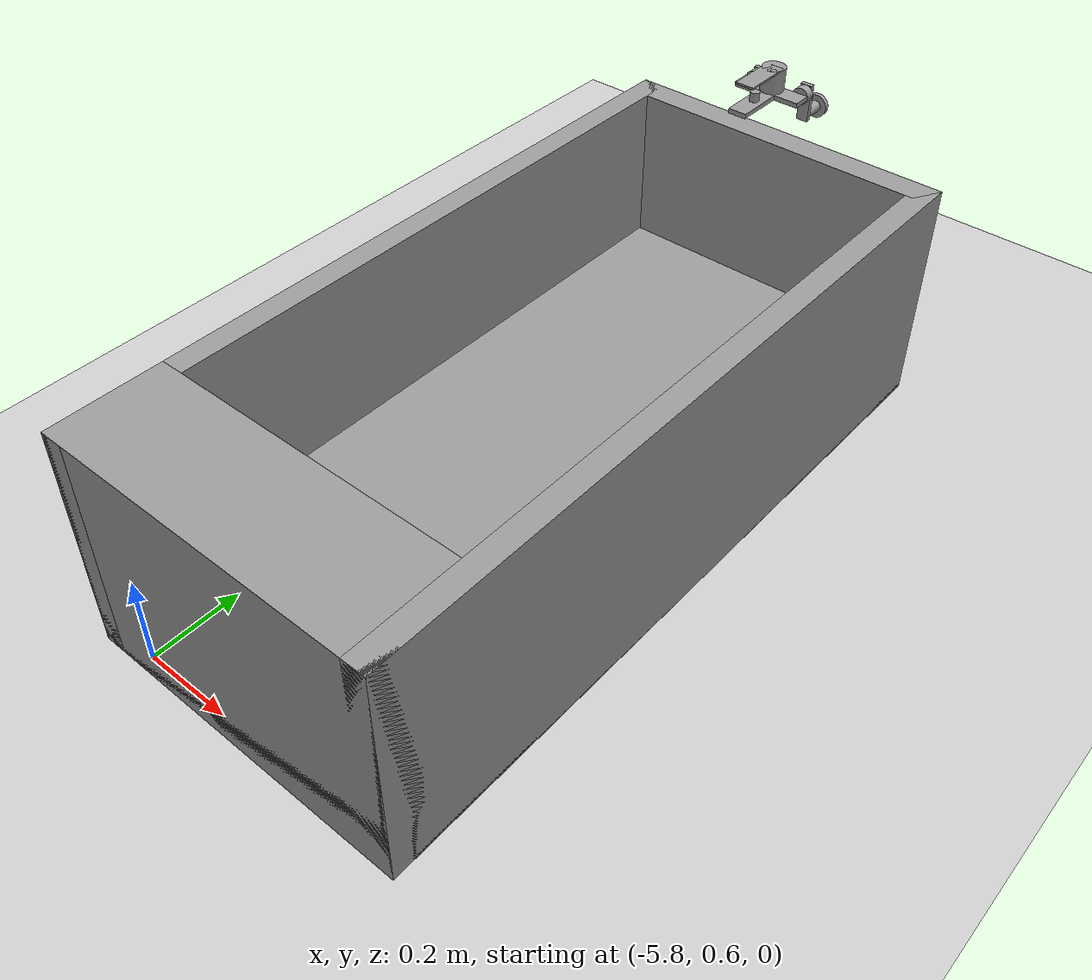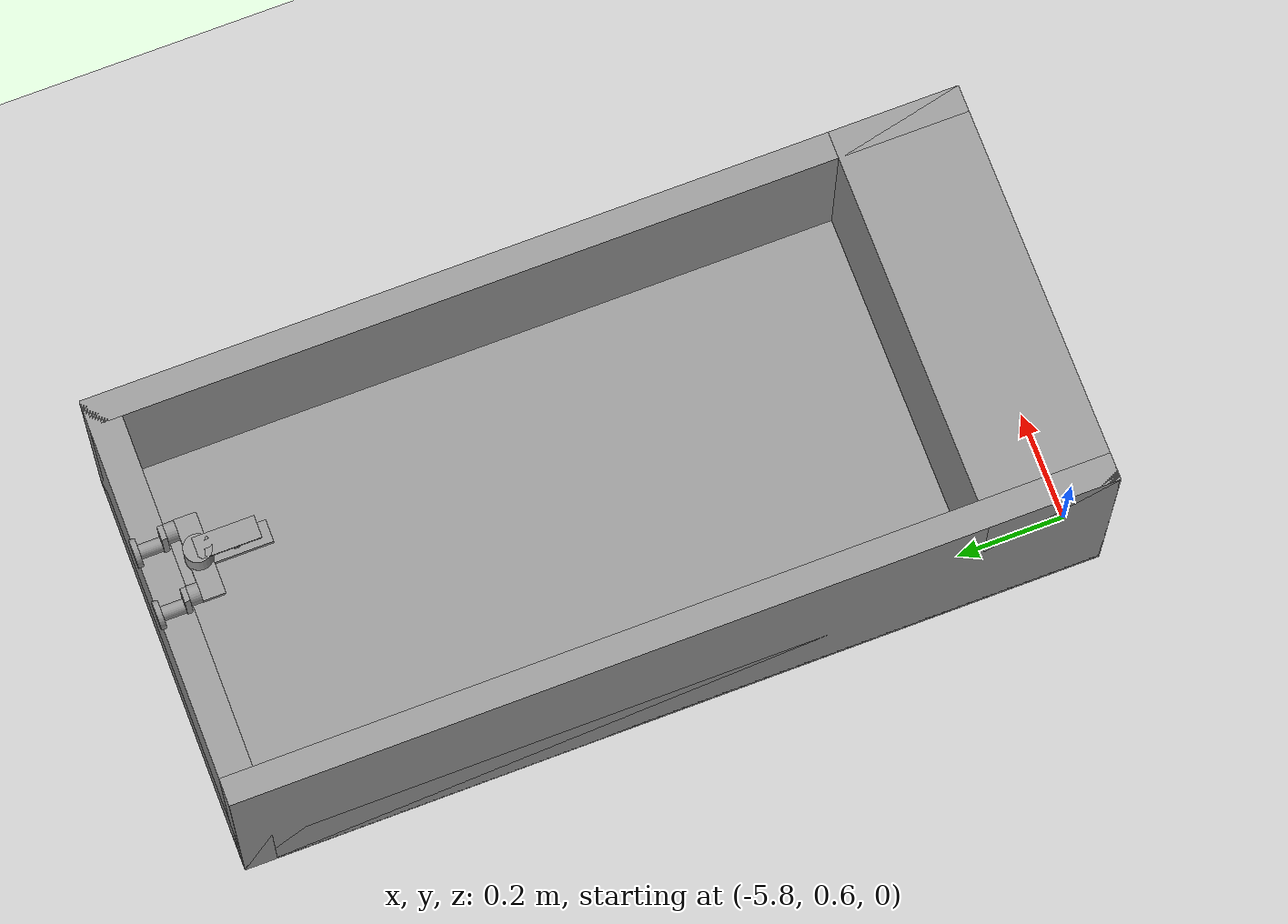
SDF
<sdf version="1.6">
 <world name="default">
  <model name="ground_plane">
   <static>1</static>
   <link name="link">
    <collision name="collision">
     <geometry><plane><normal>0 0 1</normal><size>100 100</size></plane></geometry>
     <surface><friction><ode><mu>100</mu><mu2>50</mu2></ode></friction></surface>
    </collision>
    <visual name="visual">
     <cast_shadows>0</cast_shadows>
     <geometry><plane><normal>0 0 1</normal><size>100 100</size></plane></geometry>
     <material>
      <script><uri>file://media/materials/scripts/gazebo.material</uri><name>Gazebo/Grey</name></script>
     </material>
    </visual>
   </link>
  </model>
  <model name="bathhhhh_2_0">
   <link name="link_10">
    <pose>-0.698 0 0.035 0 -0 0</pose>
    <visual name="visual">
     <geometry><box><size>0.24 0.75 0.51</size></box></geometry>
     <material>
      <lighting>1</lighting>
      <script><uri>file://media/materials/scripts/gazebo.material</uri><name>Gazebo/Grey</name></script>
      <ambient>0.3 0.3 0.3 1</ambient>
      <diffuse>0.7 0.7 0.7 1</diffuse>
      <specular>0.01 0.01 1 1</specular>
      <emissive>0 0 0 1</emissive>
      <shader type="vertex"><normal_map>__default__</normal_map></shader>
     </material>
    </visual>
    <collision name="collision">
     <geometry><box><size>0.24 0.75 0.51</size></box></geometry>
     <surface>
      <friction>
       <ode><mu>1</mu><mu2>1</mu2><fdir1>0 0 0</fdir1><slip1>0</slip1><slip2>0</slip2></ode>
       <torsional>
        <coefficient>1</coefficient>
        <patch_radius>0</patch_radius>
        <surface_radius>0</surface_radius>
        <use_patch_radius>1</use_patch_radius>
        <ode><slip>0</slip></ode>
       </torsional>
      </friction>
      <bounce><restitution_coefficient>0</restitution_coefficient><threshold>1e+06</threshold></bounce>
      <contact>
       <collide_without_contact>0</collide_without_contact>
       <collide_without_contact_bitmask>1</collide_without_contact_bitmask>
       <collide_bitmask>1</collide_bitmask>
       <ode>
        <soft_cfm>0</soft_cfm>
        <soft_erp>0.2</soft_erp>
        <kp>1e+13</kp>
        <kd>1</kd>
        <max_vel>0.01</max_vel>
        <min_depth>0</min_depth>
       </ode>
       <bullet>
        <split_impulse>1</split_impulse>
        <split_impulse_penetration_threshold>-0.01</split_impulse_penetration_threshold>
        <soft_cfm>0</soft_cfm>
        <soft_erp>0.2</soft_erp>
        <kp>1e+13</kp>
        <kd>1</kd>
       </bullet>
      </contact>
     </surface>
    </collision>
    <inertial>
     <inertia><ixx>1</ixx><ixy>0</ixy><ixz>0</ixz><iyy>1</iyy><iyz>0</iyz><izz>1</izz></inertia>
     <mass>1</mass>
    </inertial>
   </link>
   <link name="link_7">
    <pose>-0.018 0 -0.14 0 -0 0</pose>
    <visual name="visual">
     <geometry><box><size>1.6 0.75 0.16</size></box></geometry>
     <material>
      <lighting>1</lighting>
      <script><uri>file://media/materials/scripts/gazebo.material</uri><name>Gazebo/Grey</name></script>
      <ambient>0.3 0.3 0.3 1</ambient>
      <diffuse>0.7 0.7 0.7 1</diffuse>
      <specular>0.01 0.01 1 1</specular>
      <emissive>0 0 0 1</emissive>
      <shader type="vertex"><normal_map>__default__</normal_map></shader>
     </material>
    </visual>
    <collision name="collision">
     <geometry><box><size>1.6 0.75 0.16</size></box></geometry>
     <surface>
      <friction>
       <ode><mu>1</mu><mu2>1</mu2><fdir1>0 0 0</fdir1><slip1>0</slip1><slip2>0</slip2></ode>
       <torsional>
        <coefficient>1</coefficient>
        <patch_radius>0</patch_radius>
        <surface_radius>0</surface_radius>
        <use_patch_radius>1</use_patch_radius>
        <ode><slip>0</slip></ode>
       </torsional>
      </friction>
      <bounce><restitution_coefficient>0</restitution_coefficient><threshold>1e+06</threshold></bounce>
      <contact>
       <collide_without_contact>0</collide_without_contact>
       <collide_without_contact_bitmask>1</collide_without_contact_bitmask>
       <collide_bitmask>1</collide_bitmask>
       <ode>
        <soft_cfm>0</soft_cfm>
        <soft_erp>0.2</soft_erp>
        <kp>1e+13</kp>
        <kd>1</kd>
        <max_vel>0.01</max_vel>
        <min_depth>0</min_depth>
       </ode>
       <bullet>
        <split_impulse>1</split_impulse>
        <split_impulse_penetration_threshold>-0.01</split_impulse_penetration_threshold>
        <soft_cfm>0</soft_cfm>
        <soft_erp>0.2</soft_erp>
        <kp>1e+13</kp>
        <kd>1</kd>
       </bullet>
      </contact>
     </surface>
    </collision>
    <inertial>
     <inertia><ixx>1</ixx><ixy>0</ixy><ixz>0</ixz><iyy>1</iyy><iyz>0</iyz><izz>1</izz></inertia>
     <mass>1</mass>
    </inertial>
   </link>
   <link name="link_8">
    <pose>-0.018 -0.35 0.035 0 -0 0</pose>
    <visual name="visual">
     <geometry><box><size>1.6 0.05 0.51</size></box></geometry>
     <material>
      <lighting>1</lighting>
      <script><uri>file://media/materials/scripts/gazebo.material</uri><name>Gazebo/Grey</name></script>
      <ambient>0.3 0.3 0.3 1</ambient>
      <diffuse>0.7 0.7 0.7 1</diffuse>
      <specular>0.01 0.01 1 1</specular>
      <emissive>0 0 0 1</emissive>
      <shader type="vertex"><normal_map>__default__</normal_map></shader>
     </material>
    </visual>
    <collision name="collision">
     <geometry><box><size>1.6 0.05 0.51</size></box></geometry>
     <surface>
      <friction>
       <ode><mu>1</mu><mu2>1</mu2><fdir1>0 0 0</fdir1><slip1>0</slip1><slip2>0</slip2></ode>
       <torsional>
        <coefficient>1</coefficient>
        <patch_radius>0</patch_radius>
        <surface_radius>0</surface_radius>
        <use_patch_radius>1</use_patch_radius>
        <ode><slip>0</slip></ode>
       </torsional>
      </friction>
      <bounce><restitution_coefficient>0</restitution_coefficient><threshold>1e+06</threshold></bounce>
      <contact>
       <collide_without_contact>0</collide_without_contact>
       <collide_without_contact_bitmask>1</collide_without_contact_bitmask>
       <collide_bitmask>1</collide_bitmask>
       <ode>
        <soft_cfm>0</soft_cfm>
        <soft_erp>0.2</soft_erp>
        <kp>1e+13</kp>
        <kd>1</kd>
        <max_vel>0.01</max_vel>
        <min_depth>0</min_depth>
       </ode>
       <bullet>
        <split_impulse>1</split_impulse>
        <split_impulse_penetration_threshold>-0.01</split_impulse_penetration_threshold>
        <soft_cfm>0</soft_cfm>
        <soft_erp>0.2</soft_erp>
        <kp>1e+13</kp>
        <kd>1</kd>
       </bullet>
      </contact>
     </surface>
    </collision>
    <inertial>
     <inertia><ixx>1</ixx><ixy>0</ixy><ixz>0</ixz><iyy>1</iyy><iyz>0</iyz><izz>1</izz></inertia>
     <mass>1</mass>
    </inertial>
   </link>
   <link name="link_8_clone">
    <pose>-0.018 0.35 0.035 0 -0 0</pose>
    <visual name="visual">
     <geometry><box><size>1.6 0.05 0.51</size></box></geometry>
     <material>
      <lighting>1</lighting>
      <script><uri>file://media/materials/scripts/gazebo.material</uri><name>Gazebo/Grey</name></script>
      <ambient>0.3 0.3 0.3 1</ambient>
      <diffuse>0.7 0.7 0.7 1</diffuse>
      <specular>0.01 0.01 1 1</specular>
      <emissive>0 0 0 1</emissive>
      <shader type="vertex"><normal_map>__default__</normal_map></shader>
     </material>
    </visual>
    <collision name="collision">
     <geometry><box><size>1.6 0.05 0.51</size></box></geometry>
     <surface>
      <friction>
       <ode><mu>1</mu><mu2>1</mu2><fdir1>0 0 0</fdir1><slip1>0</slip1><slip2>0</slip2></ode>
       <torsional>
        <coefficient>1</coefficient>
        <patch_radius>0</patch_radius>
        <surface_radius>0</surface_radius>
        <use_patch_radius>1</use_patch_radius>
        <ode><slip>0</slip></ode>
       </torsional>
      </friction>
      <bounce><restitution_coefficient>0</restitution_coefficient><threshold>1e+06</threshold></bounce>
      <contact>
       <collide_without_contact>0</collide_without_contact>
       <collide_without_contact_bitmask>1</collide_without_contact_bitmask>
       <collide_bitmask>1</collide_bitmask>
       <ode>
        <soft_cfm>0</soft_cfm>
        <soft_erp>0.2</soft_erp>
        <kp>1e+13</kp>
        <kd>1</kd>
        <max_vel>0.01</max_vel>
        <min_depth>0</min_depth>
       </ode>
       <bullet>
        <split_impulse>1</split_impulse>
        <split_impulse_penetration_threshold>-0.01</split_impulse_penetration_threshold>
        <soft_cfm>0</soft_cfm>
        <soft_erp>0.2</soft_erp>
        <kp>1e+13</kp>
        <kd>1</kd>
       </bullet>
      </contact>
     </surface>
    </collision>
    <inertial>
     <inertia><ixx>1</ixx><ixy>0</ixy><ixz>0</ixz><iyy>1</iyy><iyz>0</iyz><izz>1</izz></inertia>
     <mass>1</mass>
    </inertial>
   </link>
   <link name="link_9">
    <pose>0.752 0 0.035 0 -0 0</pose>
    <visual name="visual">
     <geometry><box><size>0.06 0.75 0.51</size></box></geometry>
     <material>
      <lighting>1</lighting>
      <script><uri>file://media/materials/scripts/gazebo.material</uri><name>Gazebo/Grey</name></script>
      <ambient>0.3 0.3 0.3 1</ambient>
      <diffuse>0.7 0.7 0.7 1</diffuse>
      <specular>0.01 0.01 1 1</specular>
      <emissive>0 0 0 1</emissive>
      <shader type="vertex"><normal_map>__default__</normal_map></shader>
     </material>
    </visual>
    <collision name="collision">
     <geometry><box><size>0.06 0.75 0.51</size></box></geometry>
     <surface>
      <friction>
       <ode><mu>1</mu><mu2>1</mu2><fdir1>0 0 0</fdir1><slip1>0</slip1><slip2>0</slip2></ode>
       <torsional>
        <coefficient>1</coefficient>
        <patch_radius>0</patch_radius>
        <surface_radius>0</surface_radius>
        <use_patch_radius>1</use_patch_radius>
        <ode><slip>0</slip></ode>
       </torsional>
      </friction>
      <bounce><restitution_coefficient>0</restitution_coefficient><threshold>1e+06</threshold></bounce>
      <contact>
       <collide_without_contact>0</collide_without_contact>
       <collide_without_contact_bitmask>1</collide_without_contact_bitmask>
       <collide_bitmask>1</collide_bitmask>
       <ode>
        <soft_cfm>0</soft_cfm>
        <soft_erp>0.2</soft_erp>
        <kp>1e+13</kp>
        <kd>1</kd>
        <max_vel>0.01</max_vel>
        <min_depth>0</min_depth>
       </ode>
       <bullet>
        <split_impulse>1</split_impulse>
        <split_impulse_penetration_threshold>-0.01</split_impulse_penetration_threshold>
        <soft_cfm>0</soft_cfm>
        <soft_erp>0.2</soft_erp>
        <kp>1e+13</kp>
        <kd>1</kd>
       </bullet>
      </contact>
     </surface>
    </collision>
    <inertial>
     <inertia><ixx>1</ixx><ixy>0</ixy><ixz>0</ixz><iyy>1</iyy><iyz>0</iyz><izz>1</izz></inertia>
     <mass>1</mass>
    </inertial>
   </link>
   <model name="faucet_2">
    <link name="link_13">
     <pose>0.049996 0 0.029687 0 -0 0</pose>
     <visual name="visual">
      <geometry><box><size>0.11 0.04 0.004</size></box></geometry>
      <material>
       <lighting>1</lighting>
       <script><uri>file://media/materials/scripts/gazebo.material</uri><name>Gazebo/Grey</name></script>
       <ambient>0.3 0.3 0.3 1</ambient>
       <diffuse>0.7 0.7 0.7 1</diffuse>
       <specular>0.01 0.01 0.01 1</specular>
       <emissive>0 0 0 1</emissive>
       <shader type="vertex"><normal_map>__default__</normal_map></shader>
      </material>
     </visual>
     <collision name="collision">
      <geometry><box><size>0.11 0.04 0.004</size></box></geometry>
      <surface>
       <friction>
        <ode><mu>1</mu><mu2>1</mu2><fdir1>0 0 0</fdir1><slip1>0</slip1><slip2>0</slip2></ode>
        <torsional>
         <coefficient>1</coefficient>
         <patch_radius>0</patch_radius>
         <surface_radius>0</surface_radius>
         <use_patch_radius>1</use_patch_radius>
         <ode><slip>0</slip></ode>
        </torsional>
       </friction>
       <bounce><restitution_coefficient>0</restitution_coefficient><threshold>1e+06</threshold></bounce>
       <contact>
        <collide_without_contact>0</collide_without_contact>
        <collide_without_contact_bitmask>1</collide_without_contact_bitmask>
        <collide_bitmask>1</collide_bitmask>
        <ode>
         <soft_cfm>0</soft_cfm>
         <soft_erp>0.2</soft_erp>
         <kp>1e+13</kp>
         <kd>1</kd>
         <max_vel>0.01</max_vel>
         <min_depth>0</min_depth>
        </ode>
        <bullet>
         <split_impulse>1</split_impulse>
         <split_impulse_penetration_threshold>-0.01</split_impulse_penetration_threshold>
         <soft_cfm>0</soft_cfm>
         <soft_erp>0.2</soft_erp>
         <kp>1e+13</kp>
         <kd>1</kd>
        </bullet>
       </contact>
      </surface>
     </collision>
     <inertial>
      <inertia><ixx>1</ixx><ixy>0</ixy><ixz>0</ixz><iyy>1</iyy><iyz>0</iyz><izz>1</izz></inertia>
      <mass>1</mass>
     </inertial>
    </link>
    <link name="link_14">
     <pose>0.037063 0 -0.023313 0 -0 0</pose>
     <visual name="visual">
      <geometry><box><size>0.12 0.04 0.01</size></box></geometry>
      <material>
       <lighting>1</lighting>
       <script><uri>file://media/materials/scripts/gazebo.material</uri><name>Gazebo/Grey</name></script>
       <ambient>0.3 0.3 0.3 1</ambient>
       <diffuse>0.7 0.7 0.7 1</diffuse>
       <specular>0.01 0.01 0.01 1</specular>
       <emissive>0 0 0 1</emissive>
       <shader type="vertex"><normal_map>__default__</normal_map></shader>
      </material>
     </visual>
     <collision name="collision">
      <geometry><box><size>0.12 0.04 0.01</size></box></geometry>
      <surface>
       <friction>
        <ode><mu>1</mu><mu2>1</mu2><fdir1>0 0 0</fdir1><slip1>0</slip1><slip2>0</slip2></ode>
        <torsional>
         <coefficient>1</coefficient>
         <patch_radius>0</patch_radius>
         <surface_radius>0</surface_radius>
         <use_patch_radius>1</use_patch_radius>
         <ode><slip>0</slip></ode>
        </torsional>
       </friction>
       <bounce><restitution_coefficient>0</restitution_coefficient><threshold>1e+06</threshold></bounce>
       <contact>
        <collide_without_contact>0</collide_without_contact>
        <collide_without_contact_bitmask>1</collide_without_contact_bitmask>
        <collide_bitmask>1</collide_bitmask>
        <ode>
         <soft_cfm>0</soft_cfm>
         <soft_erp>0.2</soft_erp>
         <kp>1e+13</kp>
         <kd>1</kd>
         <max_vel>0.01</max_vel>
         <min_depth>0</min_depth>
        </ode>
        <bullet>
         <split_impulse>1</split_impulse>
         <split_impulse_penetration_threshold>-0.01</split_impulse_penetration_threshold>
         <soft_cfm>0</soft_cfm>
         <soft_erp>0.2</soft_erp>
         <kp>1e+13</kp>
         <kd>1</kd>
        </bullet>
       </contact>
      </surface>
     </collision>
     <inertial>
      <inertia><ixx>1</ixx><ixy>0</ixy><ixz>0</ixz><iyy>1</iyy><iyz>0</iyz><izz>1</izz></inertia>
      <mass>1</mass>
     </inertial>
    </link>
    <link name="link_16">
     <pose>0.001784 0 -0.031563 0 -0 0</pose>
     <visual name="visual">
      <geometry><cylinder><radius>0.0125</radius><length>0.0065</length></cylinder></geometry>
      <material>
       <lighting>1</lighting>
       <script><uri>file://media/materials/scripts/gazebo.material</uri><name>Gazebo/Grey</name></script>
       <ambient>0.3 0.3 0.3 1</ambient>
       <diffuse>0.7 0.7 0.7 1</diffuse>
       <specular>0.01 0.01 0.01 1</specular>
       <emissive>0 0 0 1</emissive>
       <shader type="vertex"><normal_map>__default__</normal_map></shader>
      </material>
     </visual>
     <collision name="collision">
      <geometry><cylinder><radius>0.0125</radius><length>0.0065</length></cylinder></geometry>
      <surface>
       <friction>
        <ode><mu>1</mu><mu2>1</mu2><fdir1>0 0 0</fdir1><slip1>0</slip1><slip2>0</slip2></ode>
        <torsional>
         <coefficient>1</coefficient>
         <patch_radius>0</patch_radius>
         <surface_radius>0</surface_radius>
         <use_patch_radius>1</use_patch_radius>
         <ode><slip>0</slip></ode>
        </torsional>
       </friction>
       <bounce><restitution_coefficient>0</restitution_coefficient><threshold>1e+06</threshold></bounce>
       <contact>
        <collide_without_contact>0</collide_without_contact>
        <collide_without_contact_bitmask>1</collide_without_contact_bitmask>
        <collide_bitmask>1</collide_bitmask>
        <ode>
         <soft_cfm>0</soft_cfm>
         <soft_erp>0.2</soft_erp>
         <kp>1e+13</kp>
         <kd>1</kd>
         <max_vel>0.01</max_vel>
         <min_depth>0</min_depth>
        </ode>
        <bullet>
         <split_impulse>1</split_impulse>
         <split_impulse_penetration_threshold>-0.01</split_impulse_penetration_threshold>
         <soft_cfm>0</soft_cfm>
         <soft_erp>0.2</soft_erp>
         <kp>1e+13</kp>
         <kd>1</kd>
        </bullet>
       </contact>
      </surface>
     </collision>
     <inertial>
      <inertia><ixx>1</ixx><ixy>0</ixy><ixz>0</ixz><iyy>1</iyy><iyz>0</iyz><izz>1</izz></inertia>
      <mass>1</mass>
     </inertial>
    </link>
    <link name="link_17">
     <pose>0.037063 0 -0.008313 0 -0 0</pose>
     <visual name="visual">
      <geometry><cylinder><radius>0.01</radius><length>0.02</length></cylinder></geometry>
      <material>
       <lighting>1</lighting>
       <script><uri>file://media/materials/scripts/gazebo.material</uri><name>Gazebo/Grey</name></script>
       <ambient>0.3 0.3 0.3 1</ambient>
       <diffuse>0.7 0.7 0.7 1</diffuse>
       <specular>0.01 0.01 0.01 1</specular>
       <emissive>0 0 0 1</emissive>
       <shader type="vertex"><normal_map>__default__</normal_map></shader>
      </material>
     </visual>
     <collision name="collision">
      <geometry><cylinder><radius>0.01</radius><length>0.02</length></cylinder></geometry>
      <surface>
       <friction>
        <ode><mu>1</mu><mu2>1</mu2><fdir1>0 0 0</fdir1><slip1>0</slip1><slip2>0</slip2></ode>
        <torsional>
         <coefficient>1</coefficient>
         <patch_radius>0</patch_radius>
         <surface_radius>0</surface_radius>
         <use_patch_radius>1</use_patch_radius>
         <ode><slip>0</slip></ode>
        </torsional>
       </friction>
       <bounce><restitution_coefficient>0</restitution_coefficient><threshold>1e+06</threshold></bounce>
       <contact>
        <collide_without_contact>0</collide_without_contact>
        <collide_without_contact_bitmask>1</collide_without_contact_bitmask>
        <collide_bitmask>1</collide_bitmask>
        <ode>
         <soft_cfm>0</soft_cfm>
         <soft_erp>0.2</soft_erp>
         <kp>1e+13</kp>
         <kd>1</kd>
         <max_vel>0.01</max_vel>
         <min_depth>0</min_depth>
        </ode>
        <bullet>
         <split_impulse>1</split_impulse>
         <split_impulse_penetration_threshold>-0.01</split_impulse_penetration_threshold>
         <soft_cfm>0</soft_cfm>
         <soft_erp>0.2</soft_erp>
         <kp>1e+13</kp>
         <kd>1</kd>
        </bullet>
       </contact>
      </surface>
     </collision>
     <inertial>
      <inertia><ixx>1</ixx><ixy>0</ixy><ixz>0</ixz><iyy>1</iyy><iyz>0</iyz><izz>1</izz></inertia>
      <mass>1</mass>
     </inertial>
    </link>
    <link name="link_18">
     <pose>0.101123 0 0.001687 0 -0 0</pose>
     <visual name="visual">
      <geometry><cylinder><radius>0.025</radius><length>0.06</length></cylinder></geometry>
      <material>
       <lighting>1</lighting>
       <script><uri>file://media/materials/scripts/gazebo.material</uri><name>Gazebo/Grey</name></script>
       <ambient>0.3 0.3 0.3 1</ambient>
       <diffuse>0.7 0.7 0.7 1</diffuse>
       <specular>0.01 0.01 0.01 1</specular>
       <emissive>0 0 0 1</emissive>
       <shader type="vertex"><normal_map>__default__</normal_map></shader>
      </material>
     </visual>
     <collision name="collision">
      <geometry><cylinder><radius>0.025</radius><length>0.06</length></cylinder></geometry>
      <surface>
       <friction>
        <ode><mu>1</mu><mu2>1</mu2><fdir1>0 0 0</fdir1><slip1>0</slip1><slip2>0</slip2></ode>
        <torsional>
         <coefficient>1</coefficient>
         <patch_radius>0</patch_radius>
         <surface_radius>0</surface_radius>
         <use_patch_radius>1</use_patch_radius>
         <ode><slip>0</slip></ode>
        </torsional>
       </friction>
       <bounce><restitution_coefficient>0</restitution_coefficient><threshold>1e+06</threshold></bounce>
       <contact>
        <collide_without_contact>0</collide_without_contact>
        <collide_without_contact_bitmask>1</collide_without_contact_bitmask>
        <collide_bitmask>1</collide_bitmask>
        <ode>
         <soft_cfm>0</soft_cfm>
         <soft_erp>0.2</soft_erp>
         <kp>1e+13</kp>
         <kd>1</kd>
         <max_vel>0.01</max_vel>
         <min_depth>0</min_depth>
        </ode>
        <bullet>
         <split_impulse>1</split_impulse>
         <split_impulse_penetration_threshold>-0.01</split_impulse_penetration_threshold>
         <soft_cfm>0</soft_cfm>
         <soft_erp>0.2</soft_erp>
         <kp>1e+13</kp>
         <kd>1</kd>
        </bullet>
       </contact>
      </surface>
     </collision>
     <inertial>
      <inertia><ixx>1</ixx><ixy>0</ixy><ixz>0</ixz><iyy>1</iyy><iyz>0</iyz><izz>1</izz></inertia>
      <mass>1</mass>
     </inertial>
    </link>
    <link name="link_19">
     <pose>0.101123 -0.040964 -0.023313 0 -0 0</pose>
     <visual name="visual">
      <geometry><box><size>0.04 0.065 0.01</size></box></geometry>
      <material>
       <lighting>1</lighting>
       <script><uri>file://media/materials/scripts/gazebo.material</uri><name>Gazebo/Grey</name></script>
       <ambient>0.3 0.3 0.3 1</ambient>
       <diffuse>0.7 0.7 0.7 1</diffuse>
       <specular>0.01 0.01 0.01 1</specular>
       <emissive>0 0 0 1</emissive>
       <shader type="vertex"><normal_map>__default__</normal_map></shader>
      </material>
     </visual>
     <collision name="collision">
      <geometry><box><size>0.04 0.065 0.01</size></box></geometry>
      <surface>
       <friction>
        <ode><mu>1</mu><mu2>1</mu2><fdir1>0 0 0</fdir1><slip1>0</slip1><slip2>0</slip2></ode>
        <torsional>
         <coefficient>1</coefficient>
         <patch_radius>0</patch_radius>
         <surface_radius>0</surface_radius>
         <use_patch_radius>1</use_patch_radius>
         <ode><slip>0</slip></ode>
        </torsional>
       </friction>
       <bounce><restitution_coefficient>0</restitution_coefficient><threshold>1e+06</threshold></bounce>
       <contact>
        <collide_without_contact>0</collide_without_contact>
        <collide_without_contact_bitmask>1</collide_without_contact_bitmask>
        <collide_bitmask>1</collide_bitmask>
        <ode>
         <soft_cfm>0</soft_cfm>
         <soft_erp>0.2</soft_erp>
         <kp>1e+13</kp>
         <kd>1</kd>
         <max_vel>0.01</max_vel>
         <min_depth>0</min_depth>
        </ode>
        <bullet>
         <split_impulse>1</split_impulse>
         <split_impulse_penetration_threshold>-0.01</split_impulse_penetration_threshold>
         <soft_cfm>0</soft_cfm>
         <soft_erp>0.2</soft_erp>
         <kp>1e+13</kp>
         <kd>1</kd>
        </bullet>
       </contact>
      </surface>
     </collision>
     <inertial>
      <inertia><ixx>1</ixx><ixy>0</ixy><ixz>0</ixz><iyy>1</iyy><iyz>0</iyz><izz>1</izz></inertia>
      <mass>1</mass>
     </inertial>
    </link>
    <link name="link_19_clone">
     <pose>0.101123 0.042584 -0.023313 0 -0 0</pose>
     <visual name="visual">
      <geometry><box><size>0.04 0.065 0.01</size></box></geometry>
      <material>
       <lighting>1</lighting>
       <script><uri>file://media/materials/scripts/gazebo.material</uri><name>Gazebo/Grey</name></script>
       <ambient>0.3 0.3 0.3 1</ambient>
       <diffuse>0.7 0.7 0.7 1</diffuse>
       <specular>0.01 0.01 0.01 1</specular>
       <emissive>0 0 0 1</emissive>
       <shader type="vertex"><normal_map>__default__</normal_map></shader>
      </material>
     </visual>
     <collision name="collision">
      <geometry><box><size>0.04 0.065 0.01</size></box></geometry>
      <surface>
       <friction>
        <ode><mu>1</mu><mu2>1</mu2><fdir1>0 0 0</fdir1><slip1>0</slip1><slip2>0</slip2></ode>
        <torsional>
         <coefficient>1</coefficient>
         <patch_radius>0</patch_radius>
         <surface_radius>0</surface_radius>
         <use_patch_radius>1</use_patch_radius>
         <ode><slip>0</slip></ode>
        </torsional>
       </friction>
       <bounce><restitution_coefficient>0</restitution_coefficient><threshold>1e+06</threshold></bounce>
       <contact>
        <collide_without_contact>0</collide_without_contact>
        <collide_without_contact_bitmask>1</collide_without_contact_bitmask>
        <collide_bitmask>1</collide_bitmask>
        <ode>
         <soft_cfm>0</soft_cfm>
         <soft_erp>0.2</soft_erp>
         <kp>1e+13</kp>
         <kd>1</kd>
         <max_vel>0.01</max_vel>
         <min_depth>0</min_depth>
        </ode>
        <bullet>
         <split_impulse>1</split_impulse>
         <split_impulse_penetration_threshold>-0.01</split_impulse_penetration_threshold>
         <soft_cfm>0</soft_cfm>
         <soft_erp>0.2</soft_erp>
         <kp>1e+13</kp>
         <kd>1</kd>
        </bullet>
       </contact>
      </surface>
     </collision>
     <inertial>
      <inertia><ixx>1</ixx><ixy>0</ixy><ixz>0</ixz><iyy>1</iyy><iyz>0</iyz><izz>1</izz></inertia>
      <mass>1</mass>
     </inertial>
    </link>
    <link name="link_20">
     <pose>0.131125 -0.055964 -0.023313 0 1.5707 0</pose>
     <visual name="visual">
      <geometry><cylinder><radius>0.0175</radius><length>0.02</length></cylinder></geometry>
      <material>
       <lighting>1</lighting>
       <script><uri>file://media/materials/scripts/gazebo.material</uri><name>Gazebo/Grey</name></script>
       <ambient>0.3 0.3 0.3 1</ambient>
       <diffuse>0.7 0.7 0.7 1</diffuse>
       <specular>0.01 0.01 0.01 1</specular>
       <emissive>0 0 0 1</emissive>
       <shader type="vertex"><normal_map>__default__</normal_map></shader>
      </material>
     </visual>
     <collision name="collision">
      <geometry><cylinder><radius>0.0175</radius><length>0.02</length></cylinder></geometry>
      <surface>
       <friction>
        <ode><mu>1</mu><mu2>1</mu2><fdir1>0 0 0</fdir1><slip1>0</slip1><slip2>0</slip2></ode>
        <torsional>
         <coefficient>1</coefficient>
         <patch_radius>0</patch_radius>
         <surface_radius>0</surface_radius>
         <use_patch_radius>1</use_patch_radius>
         <ode><slip>0</slip></ode>
        </torsional>
       </friction>
       <bounce><restitution_coefficient>0</restitution_coefficient><threshold>1e+06</threshold></bounce>
       <contact>
        <collide_without_contact>0</collide_without_contact>
        <collide_without_contact_bitmask>1</collide_without_contact_bitmask>
        <collide_bitmask>1</collide_bitmask>
        <ode>
         <soft_cfm>0</soft_cfm>
         <soft_erp>0.2</soft_erp>
         <kp>1e+13</kp>
         <kd>1</kd>
         <max_vel>0.01</max_vel>
         <min_depth>0</min_depth>
        </ode>
        <bullet>
         <split_impulse>1</split_impulse>
         <split_impulse_penetration_threshold>-0.01</split_impulse_penetration_threshold>
         <soft_cfm>0</soft_cfm>
         <soft_erp>0.2</soft_erp>
         <kp>1e+13</kp>
         <kd>1</kd>
        </bullet>
       </contact>
      </surface>
     </collision>
     <inertial>
      <inertia><ixx>1</ixx><ixy>0</ixy><ixz>0</ixz><iyy>1</iyy><iyz>0</iyz><izz>1</izz></inertia>
      <mass>1</mass>
     </inertial>
    </link>
    <link name="link_20_clone">
     <pose>0.131125 0.057584 -0.023313 0 1.5707 0</pose>
     <visual name="visual">
      <geometry><cylinder><radius>0.0175</radius><length>0.02</length></cylinder></geometry>
      <material>
       <lighting>1</lighting>
       <script><uri>file://media/materials/scripts/gazebo.material</uri><name>Gazebo/Grey</name></script>
       <ambient>0.3 0.3 0.3 1</ambient>
       <diffuse>0.7 0.7 0.7 1</diffuse>
       <specular>0.01 0.01 0.01 1</specular>
       <emissive>0 0 0 1</emissive>
       <shader type="vertex"><normal_map>__default__</normal_map></shader>
      </material>
     </visual>
     <collision name="collision">
      <geometry><cylinder><radius>0.0175</radius><length>0.02</length></cylinder></geometry>
      <surface>
       <friction>
        <ode><mu>1</mu><mu2>1</mu2><fdir1>0 0 0</fdir1><slip1>0</slip1><slip2>0</slip2></ode>
        <torsional>
         <coefficient>1</coefficient>
         <patch_radius>0</patch_radius>
         <surface_radius>0</surface_radius>
         <use_patch_radius>1</use_patch_radius>
         <ode><slip>0</slip></ode>
        </torsional>
       </friction>
       <bounce><restitution_coefficient>0</restitution_coefficient><threshold>1e+06</threshold></bounce>
       <contact>
        <collide_without_contact>0</collide_without_contact>
        <collide_without_contact_bitmask>1</collide_without_contact_bitmask>
        <collide_bitmask>1</collide_bitmask>
        <ode>
         <soft_cfm>0</soft_cfm>
         <soft_erp>0.2</soft_erp>
         <kp>1e+13</kp>
         <kd>1</kd>
         <max_vel>0.01</max_vel>
         <min_depth>0</min_depth>
        </ode>
        <bullet>
         <split_impulse>1</split_impulse>
         <split_impulse_penetration_threshold>-0.01</split_impulse_penetration_threshold>
         <soft_cfm>0</soft_cfm>
         <soft_erp>0.2</soft_erp>
         <kp>1e+13</kp>
         <kd>1</kd>
        </bullet>
       </contact>
      </surface>
     </collision>
     <inertial>
      <inertia><ixx>1</ixx><ixy>0</ixy><ixz>0</ixz><iyy>1</iyy><iyz>0</iyz><izz>1</izz></inertia>
      <mass>1</mass>
     </inertial>
    </link>
    <link name="link_21">
     <pose>0.146126 0.057584 -0.045812 0 -0 0</pose>
     <visual name="visual">
      <geometry><box><size>0.01 0.025 0.08</size></box></geometry>
      <material>
       <lighting>1</lighting>
       <script><uri>file://media/materials/scripts/gazebo.material</uri><name>Gazebo/Grey</name></script>
       <ambient>0.3 0.3 0.3 1</ambient>
       <diffuse>0.7 0.7 0.7 1</diffuse>
       <specular>0.01 0.01 0.01 1</specular>
       <emissive>0 0 0 1</emissive>
       <shader type="vertex"><normal_map>__default__</normal_map></shader>
      </material>
     </visual>
     <collision name="collision">
      <geometry><box><size>0.01 0.025 0.08</size></box></geometry>
      <surface>
       <friction>
        <ode><mu>1</mu><mu2>1</mu2><fdir1>0 0 0</fdir1><slip1>0</slip1><slip2>0</slip2></ode>
        <torsional>
         <coefficient>1</coefficient>
         <patch_radius>0</patch_radius>
         <surface_radius>0</surface_radius>
         <use_patch_radius>1</use_patch_radius>
         <ode><slip>0</slip></ode>
        </torsional>
       </friction>
       <bounce><restitution_coefficient>0</restitution_coefficient><threshold>1e+06</threshold></bounce>
       <contact>
        <collide_without_contact>0</collide_without_contact>
        <collide_without_contact_bitmask>1</collide_without_contact_bitmask>
        <collide_bitmask>1</collide_bitmask>
        <ode>
         <soft_cfm>0</soft_cfm>
         <soft_erp>0.2</soft_erp>
         <kp>1e+13</kp>
         <kd>1</kd>
         <max_vel>0.01</max_vel>
         <min_depth>0</min_depth>
        </ode>
        <bullet>
         <split_impulse>1</split_impulse>
         <split_impulse_penetration_threshold>-0.01</split_impulse_penetration_threshold>
         <soft_cfm>0</soft_cfm>
         <soft_erp>0.2</soft_erp>
         <kp>1e+13</kp>
         <kd>1</kd>
        </bullet>
       </contact>
      </surface>
     </collision>
     <inertial>
      <inertia><ixx>1</ixx><ixy>0</ixy><ixz>0</ixz><iyy>1</iyy><iyz>0</iyz><izz>1</izz></inertia>
      <mass>1</mass>
     </inertial>
    </link>
    <link name="link_21_clone">
     <pose>0.146126 -0.055964 -0.045812 0 -0 0</pose>
     <visual name="visual">
      <geometry><box><size>0.01 0.025 0.08</size></box></geometry>
      <material>
       <lighting>1</lighting>
       <script><uri>file://media/materials/scripts/gazebo.material</uri><name>Gazebo/Grey</name></script>
       <ambient>0.3 0.3 0.3 1</ambient>
       <diffuse>0.7 0.7 0.7 1</diffuse>
       <specular>0.01 0.01 0.01 1</specular>
       <emissive>0 0 0 1</emissive>
       <shader type="vertex"><normal_map>__default__</normal_map></shader>
      </material>
     </visual>
     <collision name="collision">
      <geometry><box><size>0.01 0.025 0.08</size></box></geometry>
      <surface>
       <friction>
        <ode><mu>1</mu><mu2>1</mu2><fdir1>0 0 0</fdir1><slip1>0</slip1><slip2>0</slip2></ode>
        <torsional>
         <coefficient>1</coefficient>
         <patch_radius>0</patch_radius>
         <surface_radius>0</surface_radius>
         <use_patch_radius>1</use_patch_radius>
         <ode><slip>0</slip></ode>
        </torsional>
       </friction>
       <bounce><restitution_coefficient>0</restitution_coefficient><threshold>1e+06</threshold></bounce>
       <contact>
        <collide_without_contact>0</collide_without_contact>
        <collide_without_contact_bitmask>1</collide_without_contact_bitmask>
        <collide_bitmask>1</collide_bitmask>
        <ode>
         <soft_cfm>0</soft_cfm>
         <soft_erp>0.2</soft_erp>
         <kp>1e+13</kp>
         <kd>1</kd>
         <max_vel>0.01</max_vel>
         <min_depth>0</min_depth>
        </ode>
        <bullet>
         <split_impulse>1</split_impulse>
         <split_impulse_penetration_threshold>-0.01</split_impulse_penetration_threshold>
         <soft_cfm>0</soft_cfm>
         <soft_erp>0.2</soft_erp>
         <kp>1e+13</kp>
         <kd>1</kd>
        </bullet>
       </contact>
      </surface>
     </collision>
     <inertial>
      <inertia><ixx>1</ixx><ixy>0</ixy><ixz>0</ixz><iyy>1</iyy><iyz>0</iyz><izz>1</izz></inertia>
      <mass>1</mass>
     </inertial>
    </link>
    <link name="link_22">
     <pose>0.171127 0.057584 -0.07331 0 1.5707 0</pose>
     <visual name="visual">
      <geometry><cylinder><radius>0.0125</radius><length>0.04</length></cylinder></geometry>
      <material>
       <lighting>1</lighting>
       <script><uri>file://media/materials/scripts/gazebo.material</uri><name>Gazebo/Grey</name></script>
       <ambient>0.3 0.3 0.3 1</ambient>
       <diffuse>0.7 0.7 0.7 1</diffuse>
       <specular>0.01 0.01 0.01 1</specular>
       <emissive>0 0 0 1</emissive>
       <shader type="vertex"><normal_map>__default__</normal_map></shader>
      </material>
     </visual>
     <collision name="collision">
      <geometry><cylinder><radius>0.0125</radius><length>0.04</length></cylinder></geometry>
      <surface>
       <friction>
        <ode><mu>1</mu><mu2>1</mu2><fdir1>0 0 0</fdir1><slip1>0</slip1><slip2>0</slip2></ode>
        <torsional>
         <coefficient>1</coefficient>
         <patch_radius>0</patch_radius>
         <surface_radius>0</surface_radius>
         <use_patch_radius>1</use_patch_radius>
         <ode><slip>0</slip></ode>
        </torsional>
       </friction>
       <bounce><restitution_coefficient>0</restitution_coefficient><threshold>1e+06</threshold></bounce>
       <contact>
        <collide_without_contact>0</collide_without_contact>
        <collide_without_contact_bitmask>1</collide_without_contact_bitmask>
        <collide_bitmask>1</collide_bitmask>
        <ode>
         <soft_cfm>0</soft_cfm>
         <soft_erp>0.2</soft_erp>
         <kp>1e+13</kp>
         <kd>1</kd>
         <max_vel>0.01</max_vel>
         <min_depth>0</min_depth>
        </ode>
        <bullet>
         <split_impulse>1</split_impulse>
         <split_impulse_penetration_threshold>-0.01</split_impulse_penetration_threshold>
         <soft_cfm>0</soft_cfm>
         <soft_erp>0.2</soft_erp>
         <kp>1e+13</kp>
         <kd>1</kd>
        </bullet>
       </contact>
      </surface>
     </collision>
     <inertial>
      <inertia><ixx>1</ixx><ixy>0</ixy><ixz>0</ixz><iyy>1</iyy><iyz>0</iyz><izz>1</izz></inertia>
      <mass>1</mass>
     </inertial>
    </link>
    <link name="link_22_clone">
     <pose>0.171127 -0.055964 -0.07331 0 1.5707 0</pose>
     <visual name="visual">
      <geometry><cylinder><radius>0.0125</radius><length>0.04</length></cylinder></geometry>
      <material>
       <lighting>1</lighting>
       <script><uri>file://media/materials/scripts/gazebo.material</uri><name>Gazebo/Grey</name></script>
       <ambient>0.3 0.3 0.3 1</ambient>
       <diffuse>0.7 0.7 0.7 1</diffuse>
       <specular>0.01 0.01 0.01 1</specular>
       <emissive>0 0 0 1</emissive>
       <shader type="vertex"><normal_map>__default__</normal_map></shader>
      </material>
     </visual>
     <collision name="collision">
      <geometry><cylinder><radius>0.0125</radius><length>0.04</length></cylinder></geometry>
      <surface>
       <friction>
        <ode><mu>1</mu><mu2>1</mu2><fdir1>0 0 0</fdir1><slip1>0</slip1><slip2>0</slip2></ode>
        <torsional>
         <coefficient>1</coefficient>
         <patch_radius>0</patch_radius>
         <surface_radius>0</surface_radius>
         <use_patch_radius>1</use_patch_radius>
         <ode><slip>0</slip></ode>
        </torsional>
       </friction>
       <bounce><restitution_coefficient>0</restitution_coefficient><threshold>1e+06</threshold></bounce>
       <contact>
        <collide_without_contact>0</collide_without_contact>
        <collide_without_contact_bitmask>1</collide_without_contact_bitmask>
        <collide_bitmask>1</collide_bitmask>
        <ode>
         <soft_cfm>0</soft_cfm>
         <soft_erp>0.2</soft_erp>
         <kp>1e+13</kp>
         <kd>1</kd>
         <max_vel>0.01</max_vel>
         <min_depth>0</min_depth>
        </ode>
        <bullet>
         <split_impulse>1</split_impulse>
         <split_impulse_penetration_threshold>-0.01</split_impulse_penetration_threshold>
         <soft_cfm>0</soft_cfm>
         <soft_erp>0.2</soft_erp>
         <kp>1e+13</kp>
         <kd>1</kd>
        </bullet>
       </contact>
      </surface>
     </collision>
     <inertial>
      <inertia><ixx>1</ixx><ixy>0</ixy><ixz>0</ixz><iyy>1</iyy><iyz>0</iyz><izz>1</izz></inertia>
      <mass>1</mass>
     </inertial>
    </link>
    <link name="link_23">
     <pose>0.196131 -0.055964 -0.07331 0 1.5707 0</pose>
     <visual name="visual">
      <geometry><cylinder><radius>0.025</radius><length>0.01</length></cylinder></geometry>
      <material>
       <lighting>1</lighting>
       <script><uri>file://media/materials/scripts/gazebo.material</uri><name>Gazebo/Grey</name></script>
       <ambient>0.3 0.3 0.3 1</ambient>
       <diffuse>0.7 0.7 0.7 1</diffuse>
       <specular>0.01 0.01 0.01 1</specular>
       <emissive>0 0 0 1</emissive>
       <shader type="vertex"><normal_map>__default__</normal_map></shader>
      </material>
     </visual>
     <collision name="collision">
      <geometry><cylinder><radius>0.025</radius><length>0.01</length></cylinder></geometry>
      <surface>
       <friction>
        <ode><mu>1</mu><mu2>1</mu2><fdir1>0 0 0</fdir1><slip1>0</slip1><slip2>0</slip2></ode>
        <torsional>
         <coefficient>1</coefficient>
         <patch_radius>0</patch_radius>
         <surface_radius>0</surface_radius>
         <use_patch_radius>1</use_patch_radius>
         <ode><slip>0</slip></ode>
        </torsional>
       </friction>
       <bounce><restitution_coefficient>0</restitution_coefficient><threshold>1e+06</threshold></bounce>
       <contact>
        <collide_without_contact>0</collide_without_contact>
        <collide_without_contact_bitmask>1</collide_without_contact_bitmask>
        <collide_bitmask>1</collide_bitmask>
        <ode>
         <soft_cfm>0</soft_cfm>
         <soft_erp>0.2</soft_erp>
         <kp>1e+13</kp>
         <kd>1</kd>
         <max_vel>0.01</max_vel>
         <min_depth>0</min_depth>
        </ode>
        <bullet>
         <split_impulse>1</split_impulse>
         <split_impulse_penetration_threshold>-0.01</split_impulse_penetration_threshold>
         <soft_cfm>0</soft_cfm>
         <soft_erp>0.2</soft_erp>
         <kp>1e+13</kp>
         <kd>1</kd>
        </bullet>
       </contact>
      </surface>
     </collision>
     <inertial>
      <inertia><ixx>1</ixx><ixy>0</ixy><ixz>0</ixz><iyy>1</iyy><iyz>0</iyz><izz>1</izz></inertia>
      <mass>1</mass>
     </inertial>
    </link>
    <link name="link_23_clone">
     <pose>0.196131 0.057584 -0.07331 0 1.5707 0</pose>
     <visual name="visual">
      <geometry><cylinder><radius>0.025</radius><length>0.01</length></cylinder></geometry>
      <material>
       <lighting>1</lighting>
       <script><uri>file://media/materials/scripts/gazebo.material</uri><name>Gazebo/Grey</name></script>
       <ambient>0.3 0.3 0.3 1</ambient>
       <diffuse>0.7 0.7 0.7 1</diffuse>
       <specular>0.01 0.01 0.01 1</specular>
       <emissive>0 0 0 1</emissive>
       <shader type="vertex"><normal_map>__default__</normal_map></shader>
      </material>
     </visual>
     <collision name="collision">
      <geometry><cylinder><radius>0.025</radius><length>0.01</length></cylinder></geometry>
      <surface>
       <friction>
        <ode><mu>1</mu><mu2>1</mu2><fdir1>0 0 0</fdir1><slip1>0</slip1><slip2>0</slip2></ode>
        <torsional>
         <coefficient>1</coefficient>
         <patch_radius>0</patch_radius>
         <surface_radius>0</surface_radius>
         <use_patch_radius>1</use_patch_radius>
         <ode><slip>0</slip></ode>
        </torsional>
       </friction>
       <bounce><restitution_coefficient>0</restitution_coefficient><threshold>1e+06</threshold></bounce>
       <contact>
        <collide_without_contact>0</collide_without_contact>
        <collide_without_contact_bitmask>1</collide_without_contact_bitmask>
        <collide_bitmask>1</collide_bitmask>
        <ode>
         <soft_cfm>0</soft_cfm>
         <soft_erp>0.2</soft_erp>
         <kp>1e+13</kp>
         <kd>1</kd>
         <max_vel>0.01</max_vel>
         <min_depth>0</min_depth>
        </ode>
        <bullet>
         <split_impulse>1</split_impulse>
         <split_impulse_penetration_threshold>-0.01</split_impulse_penetration_threshold>
         <soft_cfm>0</soft_cfm>
         <soft_erp>0.2</soft_erp>
         <kp>1e+13</kp>
         <kd>1</kd>
        </bullet>
       </contact>
      </surface>
     </collision>
     <inertial>
      <inertia><ixx>1</ixx><ixy>0</ixy><ixz>0</ixz><iyy>1</iyy><iyz>0</iyz><izz>1</izz></inertia>
      <mass>1</mass>
     </inertial>
    </link>
    <joint name="link_14_JOINT_49" type="fixed">
     <parent>link_14</parent>
     <child>link_18</child>
     <physics>
      <ode><limit><cfm>0</cfm><erp>0.2</erp></limit><suspension><cfm>0</cfm><erp>0.2</erp></suspension></ode>
     </physics>
    </joint>
    <joint name="link_14_JOINT_52" type="fixed">
     <parent>link_14</parent>
     <child>link_17</child>
     <physics>
      <ode><limit><cfm>0</cfm><erp>0.2</erp></limit><suspension><cfm>0</cfm><erp>0.2</erp></suspension></ode>
     </physics>
    </joint>
    <joint name="link_14_JOINT_53" type="fixed">
     <parent>link_14</parent>
     <child>link_16</child>
     <physics>
      <ode><limit><cfm>0</cfm><erp>0.2</erp></limit><suspension><cfm>0</cfm><erp>0.2</erp></suspension></ode>
     </physics>
    </joint>
    <joint name="link_18_JOINT_50" type="fixed">
     <parent>link_18</parent>
     <child>link_14</child>
     <physics>
      <ode><limit><cfm>0</cfm><erp>0.2</erp></limit><suspension><cfm>0</cfm><erp>0.2</erp></suspension></ode>
     </physics>
    </joint>
    <joint name="link_18_JOINT_51" type="fixed">
     <parent>link_18</parent>
     <child>link_13</child>
     <physics>
      <ode><limit><cfm>0</cfm><erp>0.2</erp></limit><suspension><cfm>0</cfm><erp>0.2</erp></suspension></ode>
     </physics>
    </joint>
    <joint name="link_18_JOINT_54" type="fixed">
     <parent>link_18</parent>
     <child>link_19_clone</child>
     <physics>
      <ode><limit><cfm>0</cfm><erp>0.2</erp></limit><suspension><cfm>0</cfm><erp>0.2</erp></suspension></ode>
     </physics>
    </joint>
    <joint name="link_18_JOINT_55" type="fixed">
     <parent>link_18</parent>
     <child>link_19</child>
     <physics>
      <ode><limit><cfm>0</cfm><erp>0.2</erp></limit><suspension><cfm>0</cfm><erp>0.2</erp></suspension></ode>
     </physics>
    </joint>
    <joint name="link_19_JOINT_57" type="fixed">
     <parent>link_19</parent>
     <child>link_20</child>
     <physics>
      <ode><limit><cfm>0</cfm><erp>0.2</erp></limit><suspension><cfm>0</cfm><erp>0.2</erp></suspension></ode>
     </physics>
    </joint>
    <joint name="link_19_JOINT_58" type="fixed">
     <parent>link_19</parent>
     <child>link_20</child>
     <physics>
      <ode><limit><cfm>0</cfm><erp>0.2</erp></limit><suspension><cfm>0</cfm><erp>0.2</erp></suspension></ode>
     </physics>
    </joint>
    <joint name="link_19_clone_JOINT_56" type="fixed">
     <parent>link_19_clone</parent>
     <child>link_20_clone</child>
     <physics>
      <ode><limit><cfm>0</cfm><erp>0.2</erp></limit><suspension><cfm>0</cfm><erp>0.2</erp></suspension></ode>
     </physics>
    </joint>
    <joint name="link_20_JOINT_60" type="fixed">
     <parent>link_20</parent>
     <child>link_21_clone</child>
     <physics>
      <ode><limit><cfm>0</cfm><erp>0.2</erp></limit><suspension><cfm>0</cfm><erp>0.2</erp></suspension></ode>
     </physics>
    </joint>
    <joint name="link_20_clone_JOINT_59" type="fixed">
     <parent>link_20_clone</parent>
     <child>link_21</child>
     <physics>
      <ode><limit><cfm>0</cfm><erp>0.2</erp></limit><suspension><cfm>0</cfm><erp>0.2</erp></suspension></ode>
     </physics>
    </joint>
    <joint name="link_21_JOINT_62" type="fixed">
     <parent>link_21</parent>
     <child>link_22</child>
     <physics>
      <ode><limit><cfm>0</cfm><erp>0.2</erp></limit><suspension><cfm>0</cfm><erp>0.2</erp></suspension></ode>
     </physics>
    </joint>
    <joint name="link_21_clone_JOINT_61" type="fixed">
     <parent>link_21_clone</parent>
     <child>link_22_clone</child>
     <physics>
      <ode><limit><cfm>0</cfm><erp>0.2</erp></limit><suspension><cfm>0</cfm><erp>0.2</erp></suspension></ode>
     </physics>
    </joint>
    <joint name="link_22_JOINT_64" type="fixed">
     <parent>link_22</parent>
     <child>link_23_clone</child>
     <physics>
      <ode><limit><cfm>0</cfm><erp>0.2</erp></limit><suspension><cfm>0</cfm><erp>0.2</erp></suspension></ode>
     </physics>
    </joint>
    <joint name="link_22_clone_JOINT_63" type="fixed">
     <parent>link_22_clone</parent>
     <child>link_23</child>
     <physics>
      <ode><limit><cfm>0</cfm><erp>0.2</erp></limit><suspension><cfm>0</cfm><erp>0.2</erp></suspension></ode>
     </physics>
    </joint>
    <static>0</static>
    <pose>0.586417 -0.009954 0.450387 0 -0 0</pose>
   </model>
   <joint name="link_14_JOINT_11" type="fixed">
    <parent>faucet_2::link_14</parent>
    <child>faucet_2::link_17</child>
    <physics>
     <ode><limit><cfm>0</cfm><erp>0.2</erp></limit><suspension><cfm>0</cfm><erp>0.2</erp></suspension></ode>
    </physics>
   </joint>
   <joint name="link_14_JOINT_12" type="fixed">
    <parent>faucet_2::link_14</parent>
    <child>faucet_2::link_16</child>
    <physics>
     <ode><limit><cfm>0</cfm><erp>0.2</erp></limit><suspension><cfm>0</cfm><erp>0.2</erp></suspension></ode>
    </physics>
   </joint>
   <joint name="link_14_JOINT_13" type="fixed">
    <parent>faucet_2::link_14</parent>
    <child>faucet_2::link_18</child>
    <physics>
     <ode><limit><cfm>0</cfm><erp>0.2</erp></limit><suspension><cfm>0</cfm><erp>0.2</erp></suspension></ode>
    </physics>
   </joint>
   <joint name="link_18_JOINT_10" type="fixed">
    <parent>faucet_2::link_18</parent>
    <child>faucet_2::link_13</child>
    <physics>
     <ode><limit><cfm>0</cfm><erp>0.2</erp></limit><suspension><cfm>0</cfm><erp>0.2</erp></suspension></ode>
    </physics>
   </joint>
   <joint name="link_19_JOINT_18" type="fixed">
    <parent>faucet_2::link_19</parent>
    <child>faucet_2::link_18</child>
    <physics>
     <ode><limit><cfm>0</cfm><erp>0.2</erp></limit><suspension><cfm>0</cfm><erp>0.2</erp></suspension></ode>
    </physics>
   </joint>
   <joint name="link_19_clone_JOINT_9" type="fixed">
    <parent>faucet_2::link_19_clone</parent>
    <child>faucet_2::link_18</child>
    <physics>
     <ode><limit><cfm>0</cfm><erp>0.2</erp></limit><suspension><cfm>0</cfm><erp>0.2</erp></suspension></ode>
    </physics>
   </joint>
   <joint name="link_20_JOINT_17" type="fixed">
    <parent>faucet_2::link_20</parent>
    <child>faucet_2::link_19</child>
    <physics>
     <ode><limit><cfm>0</cfm><erp>0.2</erp></limit><suspension><cfm>0</cfm><erp>0.2</erp></suspension></ode>
    </physics>
   </joint>
   <joint name="link_20_clone_JOINT_6" type="fixed">
    <parent>faucet_2::link_20_clone</parent>
    <child>faucet_2::link_21_clone</child>
    <physics>
     <ode><limit><cfm>0</cfm><erp>0.2</erp></limit><suspension><cfm>0</cfm><erp>0.2</erp></suspension></ode>
    </physics>
   </joint>
   <joint name="link_20_clone_JOINT_7" type="fixed">
    <parent>faucet_2::link_20_clone</parent>
    <child>faucet_2::link_21_clone</child>
    <physics>
     <ode><limit><cfm>0</cfm><erp>0.2</erp></limit><suspension><cfm>0</cfm><erp>0.2</erp></suspension></ode>
    </physics>
   </joint>
   <joint name="link_21_JOINT_5" type="fixed">
    <parent>faucet_2::link_21</parent>
    <child>faucet_2::link_20_clone</child>
    <physics>
     <ode><limit><cfm>0</cfm><erp>0.2</erp></limit><suspension><cfm>0</cfm><erp>0.2</erp></suspension></ode>
    </physics>
   </joint>
   <joint name="link_21_clone_JOINT_16" type="fixed">
    <parent>faucet_2::link_21_clone</parent>
    <child>faucet_2::link_20</child>
    <physics>
     <ode><limit><cfm>0</cfm><erp>0.2</erp></limit><suspension><cfm>0</cfm><erp>0.2</erp></suspension></ode>
    </physics>
   </joint>
   <joint name="link_21_clone_JOINT_8" type="fixed">
    <parent>faucet_2::link_21_clone</parent>
    <child>faucet_2::link_19_clone</child>
    <physics>
     <ode><limit><cfm>0</cfm><erp>0.2</erp></limit><suspension><cfm>0</cfm><erp>0.2</erp></suspension></ode>
    </physics>
   </joint>
   <joint name="link_22_JOINT_2" type="fixed">
    <parent>faucet_2::link_22</parent>
    <child>faucet_2::link_21</child>
    <physics>
     <ode><limit><cfm>0</cfm><erp>0.2</erp></limit><suspension><cfm>0</cfm><erp>0.2</erp></suspension></ode>
    </physics>
   </joint>
   <joint name="link_22_JOINT_3" type="fixed">
    <parent>faucet_2::link_22</parent>
    <child>faucet_2::link_23_clone</child>
    <physics>
     <ode><limit><cfm>0</cfm><erp>0.2</erp></limit><suspension><cfm>0</cfm><erp>0.2</erp></suspension></ode>
    </physics>
   </joint>
   <joint name="link_22_JOINT_4" type="fixed">
    <parent>faucet_2::link_22</parent>
    <child>faucet_2::link_21</child>
    <physics>
     <ode><limit><cfm>0</cfm><erp>0.2</erp></limit><suspension><cfm>0</cfm><erp>0.2</erp></suspension></ode>
    </physics>
   </joint>
   <joint name="link_22_clone_JOINT_14" type="fixed">
    <parent>faucet_2::link_22_clone</parent>
    <child>faucet_2::link_23</child>
    <physics>
     <ode><limit><cfm>0</cfm><erp>0.2</erp></limit><suspension><cfm>0</cfm><erp>0.2</erp></suspension></ode>
    </physics>
   </joint>
   <joint name="link_22_clone_JOINT_15" type="fixed">
    <parent>faucet_2::link_22_clone</parent>
    <child>faucet_2::link_21_clone</child>
    <physics>
     <ode><limit><cfm>0</cfm><erp>0.2</erp></limit><suspension><cfm>0</cfm><erp>0.2</erp></suspension></ode>
    </physics>
   </joint>
   <joint name="link_7_JOINT_37" type="fixed">
    <parent>link_7</parent>
    <child>link_8</child>
    <physics>
     <ode><limit><cfm>0</cfm><erp>0.2</erp></limit><suspension><cfm>0</cfm><erp>0.2</erp></suspension></ode>
    </physics>
   </joint>
   <joint name="link_7_JOINT_38" type="fixed">
    <parent>link_7</parent>
    <child>link_9</child>
    <physics>
     <ode><limit><cfm>0</cfm><erp>0.2</erp></limit><suspension><cfm>0</cfm><erp>0.2</erp></suspension></ode>
    </physics>
   </joint>
   <joint name="link_7_JOINT_39" type="fixed">
    <parent>link_7</parent>
    <child>link_10</child>
    <physics>
     <ode><limit><cfm>0</cfm><erp>0.2</erp></limit><suspension><cfm>0</cfm><erp>0.2</erp></suspension></ode>
    </physics>
   </joint>
   <joint name="link_7_JOINT_40" type="fixed">
    <parent>link_7</parent>
    <child>link_8_clone</child>
    <physics>
     <ode><limit><cfm>0</cfm><erp>0.2</erp></limit><suspension><cfm>0</cfm><erp>0.2</erp></suspension></ode>
    </physics>
   </joint>
   <joint name="link_7_JOINT_41" type="fixed">
    <parent>link_7</parent>
    <child>link_9</child>
    <physics>
     <ode><limit><cfm>0</cfm><erp>0.2</erp></limit><suspension><cfm>0</cfm><erp>0.2</erp></suspension></ode>
    </physics>
   </joint>
   <joint name="link_8_JOINT_1" type="fixed">
    <parent>link_8</parent>
    <child>faucet_2::link_22_clone</child>
    <physics>
     <ode><limit><cfm>0</cfm><erp>0.2</erp></limit><suspension><cfm>0</cfm><erp>0.2</erp></suspension></ode>
    </physics>
   </joint>
   <joint name="link_8_clone_JOINT_0" type="fixed">
    <parent>link_8_clone</parent>
    <child>faucet_2::link_22</child>
    <physics>
     <ode><limit><cfm>0</cfm><erp>0.2</erp></limit><suspension><cfm>0</cfm><erp>0.2</erp></suspension></ode>
    </physics>
   </joint>
   <static>0</static>
   <pose>-5.51518 1.38696 0.231496 2e-06 5e-06 1.56986</pose>
  </model>
 </world>
</sdf>
